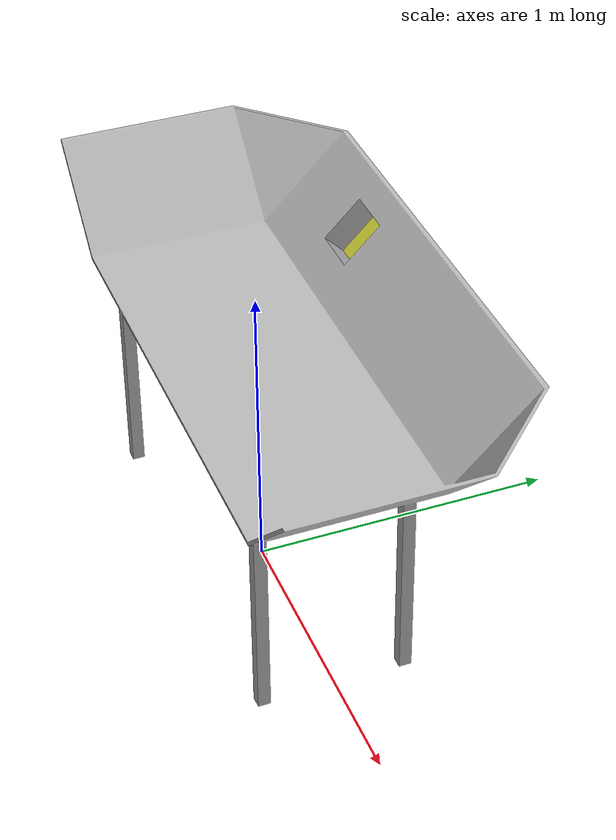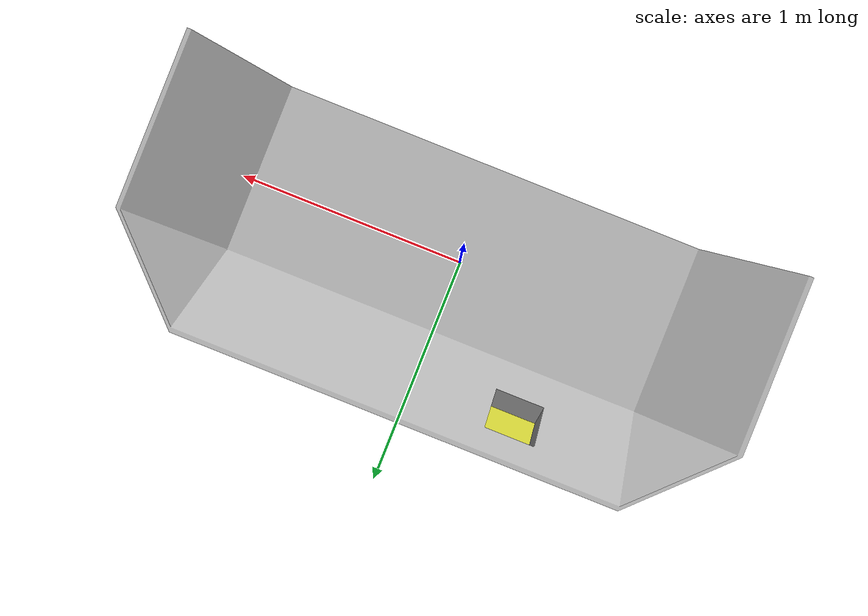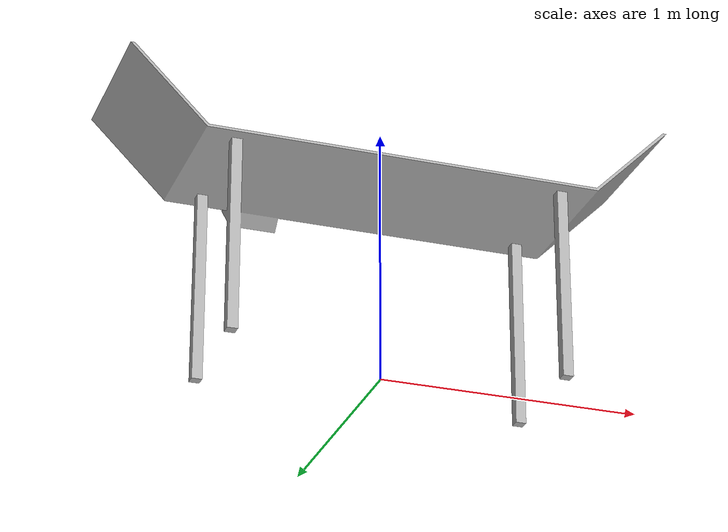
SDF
<?xml version='1.0'?>
<sdf version="1.4">
<model name="table">

    <link name="table">
      <self_collide>true</self_collide>
      <pose>0 0 0.751 0 0 0</pose>
      <inertial>
        <mass>100</mass>
        <inertia>
          <ixx>0.83</ixx>
          <ixy>0.0</ixy>
          <ixz>0.0</ixz>
          <iyy>0.83</iyy>
          <iyz>0.0</iyz>
          <izz>0.83</izz>
        </inertia>
      </inertial>
      <collision name="collision">
        <geometry>
            <mesh>
                <uri>model://DREAM_table/meshes/setup2.dae</uri>
            </mesh>
        </geometry>
        <surface>
          <friction>
            <ode>
              <mu>100</mu>
              <mu2>100</mu2>
            </ode>
          </friction>
        </surface>
      </collision>
      <visual name="visual">
        <geometry>
            <mesh>
                <uri>model://DREAM_table/meshes/setup2.dae</uri>
            </mesh>
        </geometry>
      </visual>
    </link>

    <link name="pocket">
      <self_collide>true</self_collide>
      <pose>-0.360 0.520 0.85  0.7854 0 0</pose>
      <collision name="pocket_collision">
        <geometry>
          <box><size>0.175 0.175 0.002</size></box>
        </geometry>
      </collision>
      <visual name="visual">
        <geometry>
          <box><size>0.175 0.175 0.002</size></box>
        </geometry>
        <material>
          <diffuse>0.8 0.8 0.2 1</diffuse>
          <ambient>0.7 0.7 0.1 1</ambient>
          <specular>0.95 0.95 0.8 1</specular>
          <emissive>0 0 0 0</emissive>
        </material>
      </visual>

      <sensor type="contact" name="contact">
        <visualize>true</visualize>
        <contact>
          <collision>pocket_collision</collision>
        </contact>
        <plugin name="my_plugin" filename="libDREAM_tablepocket_sensor.so"/>
      </sensor>
    </link>

    <joint name="encastrement" type="revolute">
        <pose>0 0 0 0 0 0</pose>
        <child>pocket</child>
        <parent>table</parent>
        <axis>
            <xyz>1 0 0</xyz>
            <limit>
                <lower>-0</lower>
                <upper>0</upper>
            </limit>
        </axis>
    </joint>

  </model>
</sdf>
